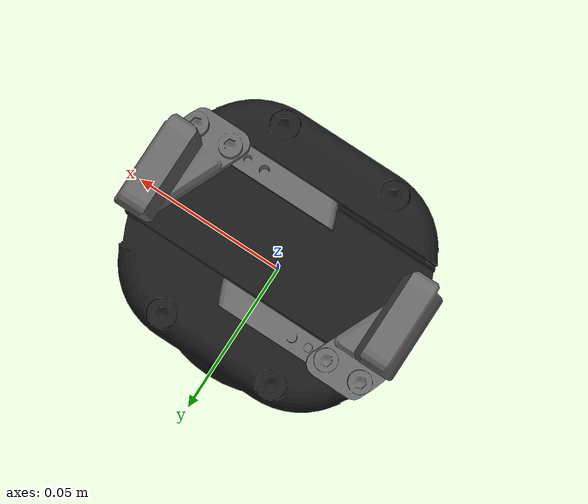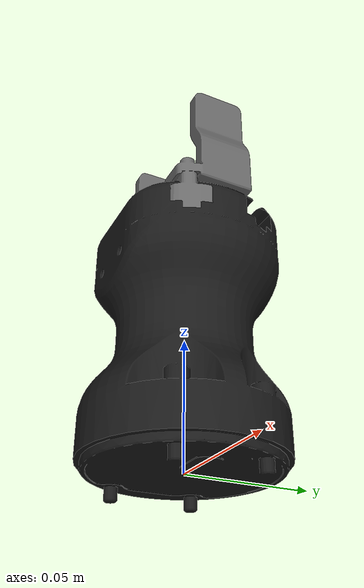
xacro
<?xml version="1.0"?>
<robot xmlns:xacro="http://ros.org/wiki/xacro"
       name="gripper_gazebo_complete" >

  <!-- robotiq_hande_gripper gazebo -->
  <xacro:include filename="$(find robotiq_gazebo)/urdf/gripper_gazebo.xacro" />

  <link name="world" />

  <!-- gripper -->
  <xacro:robotiq_gazebo prefix="" parent="world" >
    <origin xyz="0.0 0.0 0.0" rpy="0 0 0"/>
  </xacro:robotiq_gazebo>

</robot>

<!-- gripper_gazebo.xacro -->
<robot xmlns:xacro="http://ros.org/wiki/xacro" name="robotiq">

  <xacro:macro name="robotiq_gazebo" params="prefix parent *origin launch_gazebo_ros_control_plugin='true'">

    <!-- includes -->
    <xacro:include filename="$(find robotiq_description)/urdf/robotiq_hande_gripper.urdf.xacro" />

    <!-- Launching each component -->
    <!-- Gripper's main body -->
    <xacro:robotiq_hande_gripper prefix="${prefix}" parent="${parent}">
      <xacro:insert_block name="origin" />
    </xacro:robotiq_hande_gripper>

    <!-- Loading Gazebo plugins -->
    <xacro:if value="${launch_gazebo_ros_control_plugin}">
      <gazebo>
        <plugin name="ros_control" filename="libgazebo_ros_control.so">
        </plugin>
      </gazebo>
    </xacro:if>

    <!-- Disabling gravity -->
    <gazebo reference="hande_left_finger">
      <gravity>0</gravity>
    </gazebo>

    <gazebo reference="hande_right_finger">
      <gravity>0</gravity>
    </gazebo>

    <gazebo>
      <plugin name="gazebo_grasp_fix" filename="libgazebo_grasp_fix.so">
        <arm>
          <arm_name>hande</arm_name>
          <palm_link>wrist_3_link</palm_link>
          <gripper_link>hande_left_finger</gripper_link>
          <gripper_link>hande_right_finger</gripper_link>
        </arm>
        <forces_angle_tolerance>100</forces_angle_tolerance>
        <update_rate>4</update_rate>
        <grip_count_threshold>4</grip_count_threshold>
        <max_grip_count>8</max_grip_count>
        <release_tolerance>0.001</release_tolerance>
        <disable_collisions_on_attach>false</disable_collisions_on_attach>
        <contact_topic>__default_topic__</contact_topic>
      </plugin>
    </gazebo>

  </xacro:macro>

</robot>

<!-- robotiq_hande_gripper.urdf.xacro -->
<robot xmlns:xacro="http://ros.org/wiki/xacro">

  <!--
  Author: Cristian Beltran
-->

  <xacro:include filename="$(find robotiq_description)/urdf/robotiq_hande_gripper.transmission.xacro" />

  <xacro:macro name="robotiq_hande_gripper" params="prefix parent *origin">

    <joint name="${prefix}robotiq_hande_base_joint" type="fixed">
      <parent link="${parent}"/>
      <child link="${prefix}hand_e_link"/>
      <xacro:insert_block name="origin"/>
    </joint>

    <link name="${prefix}hand_e_link">
      <inertial>
        <origin rpy="0 0 0" xyz="0 0 0.04607"/>
        <mass value="0.86387"/>
        <inertia ixx="1017560E-9" ixy="0" ixz="2235E-9" iyy="1028041E-9" iyz="0" izz="489810E-9"/>
      </inertial>
      <visual>
        <origin rpy="0 0 0" xyz="0 0 0"/>
        <geometry>
          <mesh filename="package://robotiq_description/meshes/hande/hand-e.dae" scale="1.0 1.0 1.0"/>
        </geometry>
        <material name="Dark">
          <color rgba=".1 0.1 0.1 1.0"/>
        </material>
      </visual>
      <collision>
        <origin rpy="0 0 0" xyz="0 0 0"/>
        <geometry>
          <mesh filename="package://robotiq_description/meshes/hande/hand-e-collision.dae" scale="1.0 1.0 1.0"/>
        </geometry>
      </collision>
    </link>
    <link name="${prefix}hande_left_finger">
      <inertial>
        <origin rpy="0 0 0" xyz="0.02262 -0.00759 0.00738"/>
        <mass value="0.03804"/>
        <inertia ixx="13567E-9" ixy="1849E-9" ixz="3622E-9" iyy="15784E-9" iyz="3616E-9" izz="7478E-9"/>
      </inertial>
      <visual>
        <origin rpy="0 0 0" xyz="0 0 0"/>
        <geometry>
          <mesh filename="package://robotiq_description/meshes/hande/finger_1.dae" scale="1.0 1.0 1.0"/>
        </geometry>
        <material name="DarkGray">
          <color rgba=".4 0.4 0.4 1.0"/>
        </material>
      </visual>
      <collision>
        <origin rpy="0 0 0" xyz="0 0 0"/>
        <geometry>
          <mesh filename="package://robotiq_description/meshes/hande/finger_1-collision.dae" scale="1.0 1.0 1.0"/>
        </geometry>
      </collision>
    </link>
    <link name="${prefix}hande_right_finger">
      <inertial>
        <origin rpy="0 0 0" xyz="-0.02262 0.00759 0.00738"/>
        <mass value="0.03804"/>
        <inertia ixx="13567E-9" ixy="1849E-9" ixz="-3622E-9" iyy="15784E-9" iyz="-3616E-9" izz="7478E-9"/>
      </inertial>
      <visual>
        <origin rpy="0 0 0" xyz="0 0 0"/>
        <geometry>
          <mesh filename="package://robotiq_description/meshes/hande/finger_2.dae" scale="1.0 1.0 1.0"/>
        </geometry>
        <material name="DarkGray">
          <color rgba=".4 0.4 0.4 1.0"/>
        </material>
      </visual>
      <collision>
        <origin rpy="0 0 0" xyz="0 0 0"/>
        <geometry>
          <mesh filename="package://robotiq_description/meshes/hande/finger_2-collision.dae" scale="1.0 1.0 1.0"/>
        </geometry>
      </collision>
    </link>

    <gazebo reference="${prefix}hand_e_link">
      <material>Gazebo/FlatBlack</material>
    </gazebo>
    <gazebo reference="${prefix}hande_right_finger">
      <material>Gazebo/Grey</material>
    </gazebo>
    <gazebo reference="${prefix}hande_left_finger">
      <material>Gazebo/Grey</material>
    </gazebo>
    <joint name="${prefix}hande_left_finger_joint" type="prismatic">
      <origin rpy="0 0 0" xyz="0 0 0.099"/>
      <parent link="${prefix}hand_e_link"/>
      <child link="${prefix}hande_left_finger"/>
      <axis xyz="-1 0 0"/>
      <limit effort="130" lower="0" upper="0.025" velocity="0.15"/>
    </joint>
    <joint name="${prefix}hande_right_finger_joint" type="prismatic">
      <origin rpy="0 0 0" xyz="0 0 0.099"/>
      <parent link="${prefix}hand_e_link"/>
      <child link="${prefix}hande_right_finger"/>
      <axis xyz="1 0 0"/>
      <limit effort="130" lower="0" upper="0.025" velocity="0.15"/>
    </joint>

    <!-- Improve grasping physics -->
    <gazebo reference="${prefix}hande_left_finger">
      <kp>1000000.0</kp>
      <kd>1.0</kd>
      <mu1>1.0</mu1>
      <mu2>1.0</mu2>
      <minDepth>0.001</minDepth>
    </gazebo>
    <gazebo reference="${prefix}hande_right_finger">
      <kp>1000000.0</kp>
      <kd>1.0</kd>
      <mu1>1.0</mu1>
      <mu2>1.0</mu2>
      <minDepth>0.001</minDepth>
    </gazebo>

    <xacro:robotiq_hande_gripper_transmission prefix="${prefix}" />

  </xacro:macro>
</robot>
